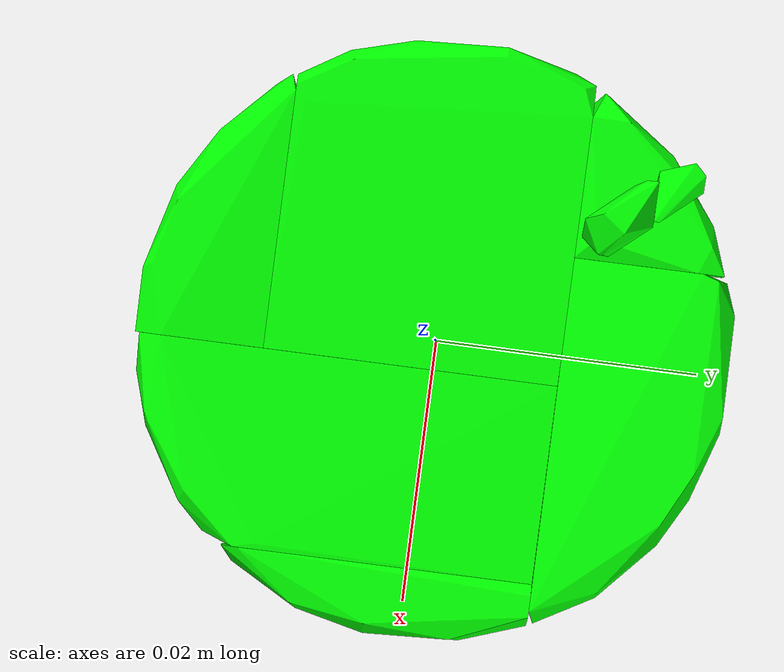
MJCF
<mujoco model="shapenetsem11">
  <asset>
    <mesh file="meshes/shapenetsem11/shapenetsem11_0.stl" name="shapenetsem11_0" scale="1 1 1"/>
    <mesh file="meshes/shapenetsem11/shapenetsem11_1.stl" name="shapenetsem11_1" scale="1 1 1"/>
    <mesh file="meshes/shapenetsem11/shapenetsem11_2.stl" name="shapenetsem11_2" scale="1 1 1"/>
    <mesh file="meshes/shapenetsem11/shapenetsem11_3.stl" name="shapenetsem11_3" scale="1 1 1"/>
    <mesh file="meshes/shapenetsem11/shapenetsem11_4.stl" name="shapenetsem11_4" scale="1 1 1"/>
    <mesh file="meshes/shapenetsem11/shapenetsem11_5.stl" name="shapenetsem11_5" scale="1 1 1"/>
    <mesh file="meshes/shapenetsem11/shapenetsem11_6.stl" name="shapenetsem11_6" scale="1 1 1"/>
    <mesh file="meshes/shapenetsem11/shapenetsem11_7.stl" name="shapenetsem11_7" scale="1 1 1"/>
    <mesh file="meshes/shapenetsem11/shapenetsem11_8.stl" name="shapenetsem11_8" scale="1 1 1"/>
    <mesh file="meshes/shapenetsem11/shapenetsem11_9.stl" name="shapenetsem11_9" scale="1 1 1"/>
    <mesh file="meshes/shapenetsem11/shapenetsem11_10.stl" name="shapenetsem11_10" scale="1 1 1"/>
    <mesh file="meshes/shapenetsem11/shapenetsem11_11.stl" name="shapenetsem11_11" scale="1 1 1"/>
    <mesh file="meshes/shapenetsem11/shapenetsem11_12.stl" name="shapenetsem11_12" scale="1 1 1"/>
    <mesh file="meshes/shapenetsem11/shapenetsem11_13.stl" name="shapenetsem11_13" scale="1 1 1"/>
    <mesh file="meshes/shapenetsem11/shapenetsem11_14.stl" name="shapenetsem11_14" scale="1 1 1"/>
    <mesh file="meshes/shapenetsem11/shapenetsem11_15.stl" name="shapenetsem11_15" scale="1 1 1"/>
    <mesh file="meshes/shapenetsem11/shapenetsem11_16.stl" name="shapenetsem11_16" scale="1 1 1"/>
    <mesh file="meshes/shapenetsem11/shapenetsem11_17.stl" name="shapenetsem11_17" scale="1 1 1"/>
    <mesh file="meshes/shapenetsem11/shapenetsem11_18.stl" name="shapenetsem11_18" scale="1 1 1"/>
    <mesh file="meshes/shapenetsem11/shapenetsem11_19.stl" name="shapenetsem11_19" scale="1 1 1"/>
  </asset>
  <worldbody>
    <body>
      <body name="collision">
        <geom pos="0 0 0" mesh="shapenetsem11_0" type="mesh" solimp="0.998 0.998 0.001" solref="0.001 1" density="100" friction="0.95 0.3 0.1" rgba="0 1 0 1" group="1" condim="4"/>
        <geom pos="0 0 0" mesh="shapenetsem11_1" type="mesh" solimp="0.998 0.998 0.001" solref="0.001 1" density="100" friction="0.95 0.3 0.1" rgba="0 1 0 1" group="1" condim="4"/>
        <geom pos="0 0 0" mesh="shapenetsem11_2" type="mesh" solimp="0.998 0.998 0.001" solref="0.001 1" density="100" friction="0.95 0.3 0.1" rgba="0 1 0 1" group="1" condim="4"/>
        <geom pos="0 0 0" mesh="shapenetsem11_3" type="mesh" solimp="0.998 0.998 0.001" solref="0.001 1" density="100" friction="0.95 0.3 0.1" rgba="0 1 0 1" group="1" condim="4"/>
        <geom pos="0 0 0" mesh="shapenetsem11_4" type="mesh" solimp="0.998 0.998 0.001" solref="0.001 1" density="100" friction="0.95 0.3 0.1" rgba="0 1 0 1" group="1" condim="4"/>
        <geom pos="0 0 0" mesh="shapenetsem11_5" type="mesh" solimp="0.998 0.998 0.001" solref="0.001 1" density="100" friction="0.95 0.3 0.1" rgba="0 1 0 1" group="1" condim="4"/>
        <geom pos="0 0 0" mesh="shapenetsem11_6" type="mesh" solimp="0.998 0.998 0.001" solref="0.001 1" density="100" friction="0.95 0.3 0.1" rgba="0 1 0 1" group="1" condim="4"/>
        <geom pos="0 0 0" mesh="shapenetsem11_7" type="mesh" solimp="0.998 0.998 0.001" solref="0.001 1" density="100" friction="0.95 0.3 0.1" rgba="0 1 0 1" group="1" condim="4"/>
        <geom pos="0 0 0" mesh="shapenetsem11_8" type="mesh" solimp="0.998 0.998 0.001" solref="0.001 1" density="100" friction="0.95 0.3 0.1" rgba="0 1 0 1" group="1" condim="4"/>
        <geom pos="0 0 0" mesh="shapenetsem11_9" type="mesh" solimp="0.998 0.998 0.001" solref="0.001 1" density="100" friction="0.95 0.3 0.1" rgba="0 1 0 1" group="1" condim="4"/>
        <geom pos="0 0 0" mesh="shapenetsem11_10" type="mesh" solimp="0.998 0.998 0.001" solref="0.001 1" density="100" friction="0.95 0.3 0.1" rgba="0 1 0 1" group="1" condim="4"/>
        <geom pos="0 0 0" mesh="shapenetsem11_11" type="mesh" solimp="0.998 0.998 0.001" solref="0.001 1" density="100" friction="0.95 0.3 0.1" rgba="0 1 0 1" group="1" condim="4"/>
        <geom pos="0 0 0" mesh="shapenetsem11_12" type="mesh" solimp="0.998 0.998 0.001" solref="0.001 1" density="100" friction="0.95 0.3 0.1" rgba="0 1 0 1" group="1" condim="4"/>
        <geom pos="0 0 0" mesh="shapenetsem11_13" type="mesh" solimp="0.998 0.998 0.001" solref="0.001 1" density="100" friction="0.95 0.3 0.1" rgba="0 1 0 1" group="1" condim="4"/>
        <geom pos="0 0 0" mesh="shapenetsem11_14" type="mesh" solimp="0.998 0.998 0.001" solref="0.001 1" density="100" friction="0.95 0.3 0.1" rgba="0 1 0 1" group="1" condim="4"/>
        <geom pos="0 0 0" mesh="shapenetsem11_15" type="mesh" solimp="0.998 0.998 0.001" solref="0.001 1" density="100" friction="0.95 0.3 0.1" rgba="0 1 0 1" group="1" condim="4"/>
        <geom pos="0 0 0" mesh="shapenetsem11_16" type="mesh" solimp="0.998 0.998 0.001" solref="0.001 1" density="100" friction="0.95 0.3 0.1" rgba="0 1 0 1" group="1" condim="4"/>
        <geom pos="0 0 0" mesh="shapenetsem11_17" type="mesh" solimp="0.998 0.998 0.001" solref="0.001 1" density="100" friction="0.95 0.3 0.1" rgba="0 1 0 1" group="1" condim="4"/>
        <geom pos="0 0 0" mesh="shapenetsem11_18" type="mesh" solimp="0.998 0.998 0.001" solref="0.001 1" density="100" friction="0.95 0.3 0.1" rgba="0 1 0 1" group="1" condim="4"/>
        <geom pos="0 0 0" mesh="shapenetsem11_19" type="mesh" solimp="0.998 0.998 0.001" solref="0.001 1" density="100" friction="0.95 0.3 0.1" rgba="0 1 0 1" group="1" condim="4"/>
      </body>
      <body name="visual">
        <geom pos="0 0 0" mesh="shapenetsem11_0" type="mesh" rgba="0 1 0 1" conaffinity="0" contype="0" group="0" mass="0.0001"/>
        <geom pos="0 0 0" mesh="shapenetsem11_1" type="mesh" rgba="0 1 0 1" conaffinity="0" contype="0" group="0" mass="0.0001"/>
        <geom pos="0 0 0" mesh="shapenetsem11_2" type="mesh" rgba="0 1 0 1" conaffinity="0" contype="0" group="0" mass="0.0001"/>
        <geom pos="0 0 0" mesh="shapenetsem11_3" type="mesh" rgba="0 1 0 1" conaffinity="0" contype="0" group="0" mass="0.0001"/>
        <geom pos="0 0 0" mesh="shapenetsem11_4" type="mesh" rgba="0 1 0 1" conaffinity="0" contype="0" group="0" mass="0.0001"/>
        <geom pos="0 0 0" mesh="shapenetsem11_5" type="mesh" rgba="0 1 0 1" conaffinity="0" contype="0" group="0" mass="0.0001"/>
        <geom pos="0 0 0" mesh="shapenetsem11_6" type="mesh" rgba="0 1 0 1" conaffinity="0" contype="0" group="0" mass="0.0001"/>
        <geom pos="0 0 0" mesh="shapenetsem11_7" type="mesh" rgba="0 1 0 1" conaffinity="0" contype="0" group="0" mass="0.0001"/>
        <geom pos="0 0 0" mesh="shapenetsem11_8" type="mesh" rgba="0 1 0 1" conaffinity="0" contype="0" group="0" mass="0.0001"/>
        <geom pos="0 0 0" mesh="shapenetsem11_9" type="mesh" rgba="0 1 0 1" conaffinity="0" contype="0" group="0" mass="0.0001"/>
        <geom pos="0 0 0" mesh="shapenetsem11_10" type="mesh" rgba="0 1 0 1" conaffinity="0" contype="0" group="0" mass="0.0001"/>
        <geom pos="0 0 0" mesh="shapenetsem11_11" type="mesh" rgba="0 1 0 1" conaffinity="0" contype="0" group="0" mass="0.0001"/>
        <geom pos="0 0 0" mesh="shapenetsem11_12" type="mesh" rgba="0 1 0 1" conaffinity="0" contype="0" group="0" mass="0.0001"/>
        <geom pos="0 0 0" mesh="shapenetsem11_13" type="mesh" rgba="0 1 0 1" conaffinity="0" contype="0" group="0" mass="0.0001"/>
        <geom pos="0 0 0" mesh="shapenetsem11_14" type="mesh" rgba="0 1 0 1" conaffinity="0" contype="0" group="0" mass="0.0001"/>
        <geom pos="0 0 0" mesh="shapenetsem11_15" type="mesh" rgba="0 1 0 1" conaffinity="0" contype="0" group="0" mass="0.0001"/>
        <geom pos="0 0 0" mesh="shapenetsem11_16" type="mesh" rgba="0 1 0 1" conaffinity="0" contype="0" group="0" mass="0.0001"/>
        <geom pos="0 0 0" mesh="shapenetsem11_17" type="mesh" rgba="0 1 0 1" conaffinity="0" contype="0" group="0" mass="0.0001"/>
        <geom pos="0 0 0" mesh="shapenetsem11_18" type="mesh" rgba="0 1 0 1" conaffinity="0" contype="0" group="0" mass="0.0001"/>
        <geom pos="0 0 0" mesh="shapenetsem11_19" type="mesh" rgba="0 1 0 1" conaffinity="0" contype="0" group="0" mass="0.0001"/>
      </body>
      <site rgba="0 0 0 0" size="0.005" pos="0 0 -0.06" name="bottom_site"/>
      <site rgba="0 0 0 0" size="0.005" pos="0 0 0.04" name="top_site"/>
      <site rgba="0 0 0 0" size="0.005" pos="0.025 0.025 0" name="horizontal_radius_site"/>
    </body>
  </worldbody>
</mujoco>
